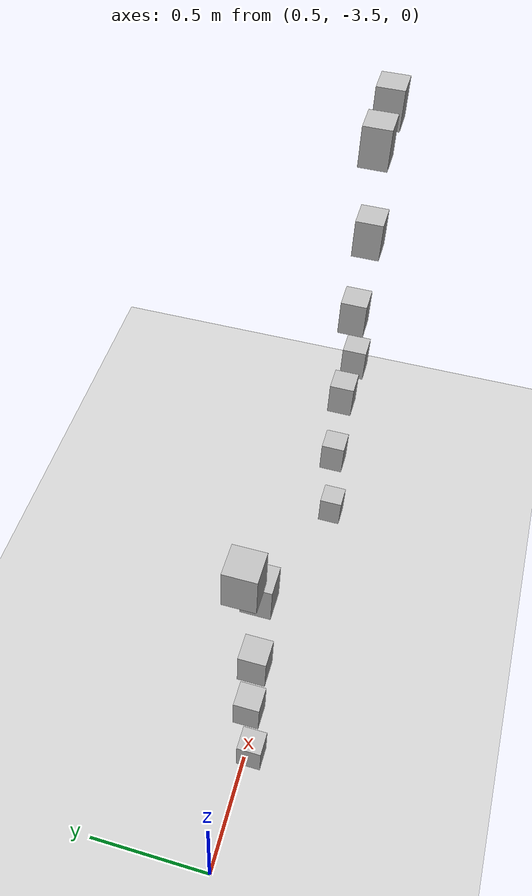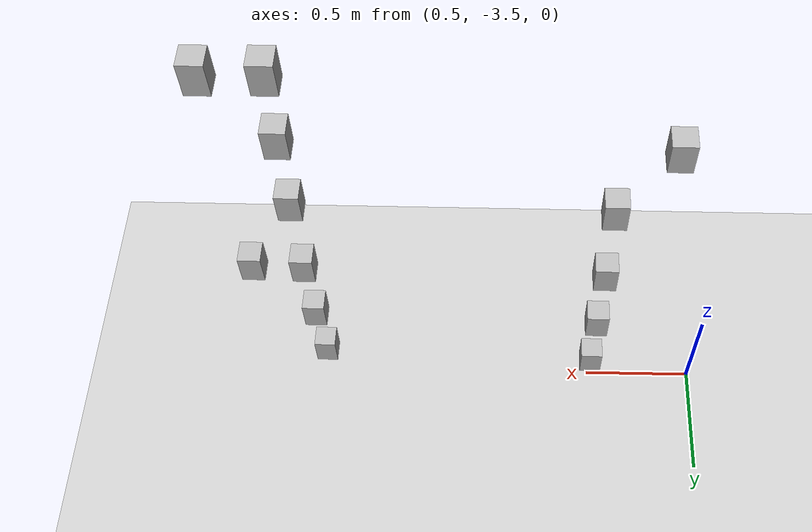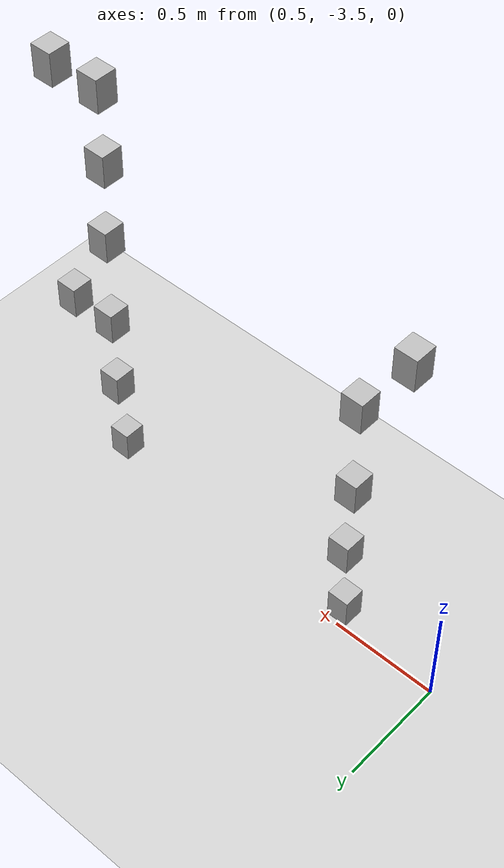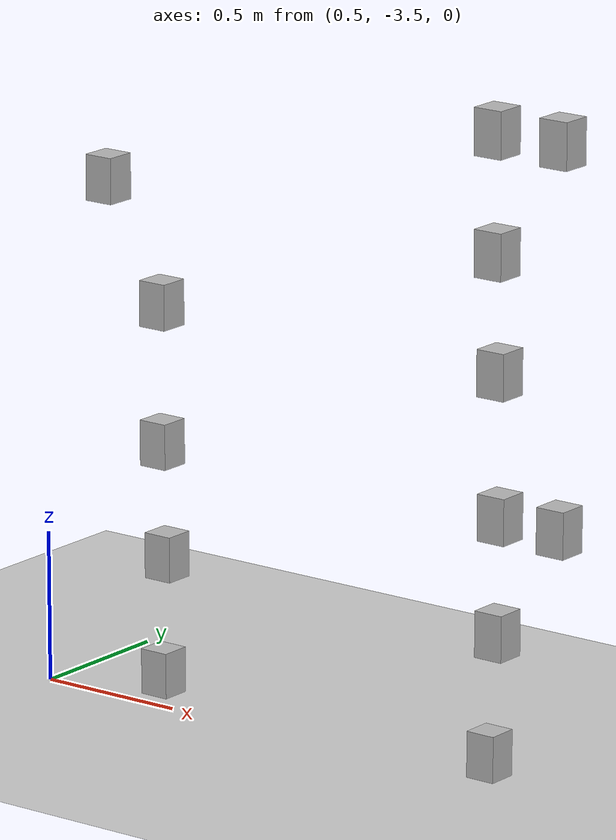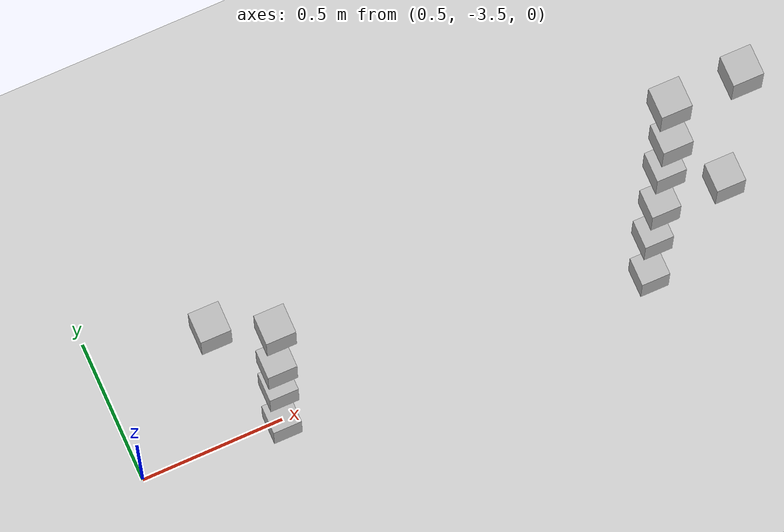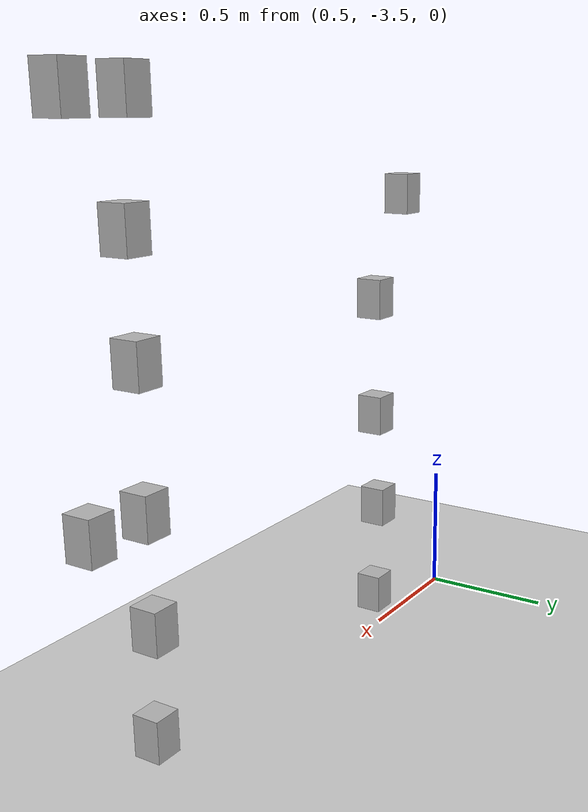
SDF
<sdf version="1.7">
 <world name="default">
  <model name="ground_plane">
   <static>1</static>
   <link name="link">
    <collision name="collision">
     <geometry><plane><normal>0 0 1</normal><size>100 100</size></plane></geometry>
     <surface><friction><ode><mu>100</mu><mu2>50</mu2></ode></friction></surface>
    </collision>
    <visual name="visual">
     <cast_shadows>0</cast_shadows>
     <geometry><plane><normal>0 0 1</normal><size>100 100</size></plane></geometry>
     <material>
      <script><uri>file://media/materials/scripts/gazebo.material</uri><name>Gazebo/Grey</name></script>
     </material>
    </visual>
   </link>
  </model>
  <model name="tea_box_clone_1">
   <link name="link">
    <pose>0 0 0.075 0 -0 0</pose>
    <visual name="visual">
     <geometry><box><size>0.1 0.1 0.15</size></box></geometry>
     <material>
      <script>
       <uri>model://tea_box/materials/scripts</uri>
       <uri>model://tea_box/materials/textures</uri>
       <name>tea_pat</name>
      </script>
     </material>
    </visual>
    <collision name="collision"><geometry><box><size>0.1 0.1 0.15</size></box></geometry></collision>
   </link>
   <static>1</static>
   <pose>2.29718 -3.56584 0.061312 0 -0 1.56458</pose>
  </model>
  <model name="tea_box_clone_clone_clone_clone_1">
   <link name="link">
    <pose>0 0 0.075 0 -0 0</pose>
    <visual name="visual">
     <geometry><box><size>0.1 0.1 0.15</size></box></geometry>
     <material>
      <script>
       <uri>model://tea_box/materials/scripts</uri>
       <uri>model://tea_box/materials/textures</uri>
       <name>tea_pat</name>
      </script>
     </material>
    </visual>
    <collision name="collision"><geometry><box><size>0.1 0.1 0.15</size></box></geometry></collision>
   </link>
   <static>1</static>
   <pose>2.30524 -3.54047 0.44421 0 -0 1.56458</pose>
  </model>
  <model name="tea_box_clone_1_clone">
   <link name="link">
    <pose>0 0 0.075 0 -0 0</pose>
    <visual name="visual">
     <geometry><box><size>0.1 0.1 0.15</size></box></geometry>
     <material>
      <script>
       <uri>model://tea_box/materials/scripts</uri>
       <uri>model://tea_box/materials/textures</uri>
       <name>tea_pat</name>
      </script>
     </material>
    </visual>
    <collision name="collision"><geometry><box><size>0.1 0.1 0.15</size></box></geometry></collision>
   </link>
   <static>1</static>
   <pose>0.989843 -3.52917 0.061312 0 -0 1.56458</pose>
  </model>
  <model name="tea_box_clone_clone_clone_clone_1_clone">
   <link name="link">
    <pose>0 0 0.075 0 -0 0</pose>
    <visual name="visual">
     <geometry><box><size>0.1 0.1 0.15</size></box></geometry>
     <material>
      <script>
       <uri>model://tea_box/materials/scripts</uri>
       <uri>model://tea_box/materials/textures</uri>
       <name>tea_pat</name>
      </script>
     </material>
    </visual>
    <collision name="collision"><geometry><box><size>0.1 0.1 0.15</size></box></geometry></collision>
   </link>
   <static>1</static>
   <pose>0.992767 -3.51094 0.44421 0 -0 1.56458</pose>
  </model>
  <model name="tea_box_clone_clone_clone_clone_clone_clone_0">
   <link name="link">
    <pose>0 0 0.075 0 -0 0</pose>
    <visual name="visual">
     <geometry><box><size>0.1 0.1 0.15</size></box></geometry>
     <material>
      <script>
       <uri>model://tea_box/materials/scripts</uri>
       <uri>model://tea_box/materials/textures</uri>
       <name>tea_pat</name>
      </script>
     </material>
    </visual>
    <collision name="collision"><geometry><box><size>0.1 0.1 0.15</size></box></geometry></collision>
   </link>
   <static>1</static>
   <pose>2.53738 -3.54794 0.818791 0 -0 1.56458</pose>
  </model>
  <model name="tea_box_clone_clone_clone_clone_clone_clone_1">
   <link name="link">
    <pose>0 0 0.075 0 -0 0</pose>
    <visual name="visual">
     <geometry><box><size>0.1 0.1 0.15</size></box></geometry>
     <material>
      <script>
       <uri>model://tea_box/materials/scripts</uri>
       <uri>model://tea_box/materials/textures</uri>
       <name>tea_pat</name>
      </script>
     </material>
    </visual>
    <collision name="collision"><geometry><box><size>0.1 0.1 0.15</size></box></geometry></collision>
   </link>
   <static>1</static>
   <pose>2.31331 -3.54292 0.818791 0 -0 1.56458</pose>
  </model>
  <model name="tea_box_clone_clone_clone_clone_clone_0_clone_1">
   <link name="link">
    <pose>0 0 0.075 0 -0 0</pose>
    <visual name="visual">
     <geometry><box><size>0.1 0.1 0.15</size></box></geometry>
     <material>
      <script>
       <uri>model://tea_box/materials/scripts</uri>
       <uri>model://tea_box/materials/textures</uri>
       <name>tea_pat</name>
      </script>
     </material>
    </visual>
    <collision name="collision"><geometry><box><size>0.1 0.1 0.15</size></box></geometry></collision>
   </link>
   <static>1</static>
   <pose>2.30978 -3.54552 1.27537 0 -0 1.56458</pose>
  </model>
  <model name="tea_box_clone_clone_clone_clone_clone_1_clone_1">
   <link name="link">
    <pose>0 0 0.075 0 -0 0</pose>
    <visual name="visual">
     <geometry><box><size>0.1 0.1 0.15</size></box></geometry>
     <material>
      <script>
       <uri>model://tea_box/materials/scripts</uri>
       <uri>model://tea_box/materials/textures</uri>
       <name>tea_pat</name>
      </script>
     </material>
    </visual>
    <collision name="collision"><geometry><box><size>0.1 0.1 0.15</size></box></geometry></collision>
   </link>
   <static>1</static>
   <pose>2.30777 -3.56093 1.65259 0 -0 1.56458</pose>
  </model>
  <model name="tea_box_clone_clone_clone_clone_clone_2_clone_0">
   <link name="link">
    <pose>0 0 0.075 0 -0 0</pose>
    <visual name="visual">
     <geometry><box><size>0.1 0.1 0.15</size></box></geometry>
     <material>
      <script>
       <uri>model://tea_box/materials/scripts</uri>
       <uri>model://tea_box/materials/textures</uri>
       <name>tea_pat</name>
      </script>
     </material>
    </visual>
    <collision name="collision"><geometry><box><size>0.1 0.1 0.15</size></box></geometry></collision>
   </link>
   <static>1</static>
   <pose>2.53109 -3.54207 2.02413 0 -0 1.56458</pose>
  </model>
  <model name="tea_box_clone_clone_clone_clone_clone_2_clone_1">
   <link name="link">
    <pose>0 0 0.075 0 -0 0</pose>
    <visual name="visual">
     <geometry><box><size>0.1 0.1 0.15</size></box></geometry>
     <material>
      <script>
       <uri>model://tea_box/materials/scripts</uri>
       <uri>model://tea_box/materials/textures</uri>
       <name>tea_pat</name>
      </script>
     </material>
    </visual>
    <collision name="collision"><geometry><box><size>0.1 0.1 0.15</size></box></geometry></collision>
   </link>
   <static>1</static>
   <pose>2.29351 -3.54558 2.02413 0 -0 1.56458</pose>
  </model>
  <model name="tea_box_clone_clone_clone_clone_clone_clone_1_clone">
   <link name="link">
    <pose>0 0 0.075 0 -0 0</pose>
    <visual name="visual">
     <geometry><box><size>0.1 0.1 0.15</size></box></geometry>
     <material>
      <script>
       <uri>model://tea_box/materials/scripts</uri>
       <uri>model://tea_box/materials/textures</uri>
       <name>tea_pat</name>
      </script>
     </material>
    </visual>
    <collision name="collision"><geometry><box><size>0.1 0.1 0.15</size></box></geometry></collision>
   </link>
   <static>1</static>
   <pose>0.98809 -3.52543 0.818791 0 -0 1.56458</pose>
  </model>
  <model name="tea_box_clone_clone_clone_clone_clone_0_clone_1_clone">
   <link name="link">
    <pose>0 0 0.075 0 -0 0</pose>
    <visual name="visual">
     <geometry><box><size>0.1 0.1 0.15</size></box></geometry>
     <material>
      <script>
       <uri>model://tea_box/materials/scripts</uri>
       <uri>model://tea_box/materials/textures</uri>
       <name>tea_pat</name>
      </script>
     </material>
    </visual>
    <collision name="collision"><geometry><box><size>0.1 0.1 0.15</size></box></geometry></collision>
   </link>
   <static>1</static>
   <pose>0.990908 -3.52814 1.27537 0 -0 1.56458</pose>
  </model>
  <model name="tea_box_clone_clone_clone_clone_clone_1_clone_1_clone">
   <link name="link">
    <pose>0 0 0.075 0 -0 0</pose>
    <visual name="visual">
     <geometry><box><size>0.1 0.1 0.15</size></box></geometry>
     <material>
      <script>
       <uri>model://tea_box/materials/scripts</uri>
       <uri>model://tea_box/materials/textures</uri>
       <name>tea_pat</name>
      </script>
     </material>
    </visual>
    <collision name="collision"><geometry><box><size>0.1 0.1 0.15</size></box></geometry></collision>
   </link>
   <static>1</static>
   <pose>0.78177 -3.53067 1.65259 0 -0 1.56458</pose>
  </model>
 </world>
</sdf>
